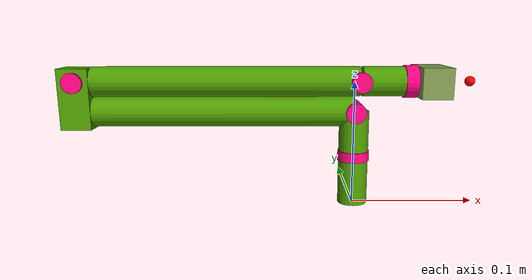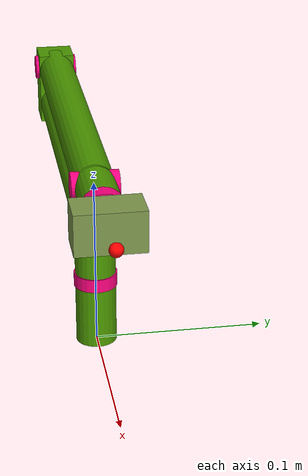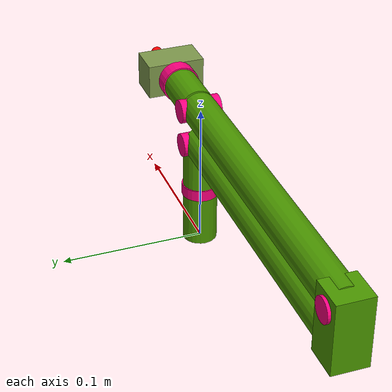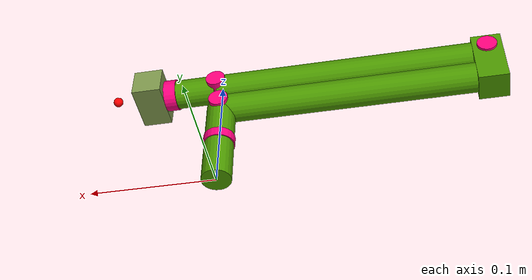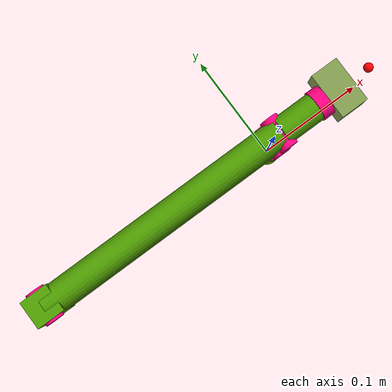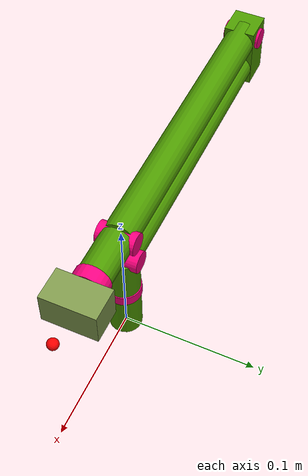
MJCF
<mujoco model="AT arm">
    <compiler inertiafromgeom="true" angle="degree"/>
    <option timestep="0.005" gravity="0 0 0" cone="elliptic" jacobian="auto" solver="Newton" impratio="1.0"/>
    <!--  collision="predefined"  -->
    <option>
        <flag gravity="enable" override="enable"/>
    </option>
    <default>
        <geom contype="1" conaffinity="1" condim="3"/>
        <joint limited="false" damping="0.5" armature="0.1" stiffness="0" frictionloss="0.1"/>
        <motor gear="1 0 0 0 0 0" ctrllimited="false" ctrlrange="-100 100"/>
    </default>
    <worldbody>
        <!--  Link1  -->
        <body name="link1" pos="0 0 0" euler="0 0 0">
            <joint name="L1" pos="0 0 0" type="hinge" axis="0 0 1" limited="false"/>
            <geom type="cylinder" pos="0 0 0.03835" size="0.012 0.03835" rgba="0.3 0.6 0 1"/>
            <geom type="cylinder" pos="0 0 0.04" euler="0 0 0" mass="0.082" size="0.0128 0.004" rgba="1 0 0.5 1"/>
            <!--  Link2  -->
            <body name="link2" pos="0 0 0.0765" euler="90 0 90">
                <joint name="L2" pos="0 0 0" type="hinge" axis="0 0 1" limited="false" range="-150 150"/>
                <geom type="cylinder" pos="0 0.110 0" euler="-90 0 0" size="0.012 0.110" rgba="0.3 0.6 0 1"/>
                <geom type="cylinder" pos="0 0 0" euler="0 0 0" mass="0.082" size="0.008 0.014" rgba="1 0 0.5 1"/>
                <geom type="box" pos="0.011 0.220 0" euler="0 0 0" size="0.024 0.012 0.012" rgba="0.3 0.6 0 1"/>
                <!--  Link3 -->
                <body name="link3" pos="0.024 0.220 0" euler="0 0 -180">
                    <joint name="L3" pos="0 0 0" type="hinge" axis="0 0 1" limited="false" range="-200 100"/>
                    <geom type="cylinder" pos="0 0.111875 0" euler="-90 0 0" mass="0.04"  size="0.012 0.111875" rgba="0.3 0.6 0 1"/>
                    <geom type="cylinder" pos="0 0 0" euler="0 0 0" mass="0.082" size="0.008 0.014" rgba="1 0 0.5 1"/>
                    <!--  Link4 -->
                    <body name="link4" pos="0 0.22375 0" euler="0 0 0">
                        <joint name="L4" pos="0 0 0" type="hinge" axis="0 0 1" limited="false" range="-160 160"/>
                        <geom type="cylinder" pos="0 0.02 0" euler="-90 0 0" mass="0.01" size="0.012 0.018" rgba="0.3 0.6 0 1"/>
                        <geom type="cylinder" pos="0 0 0" euler="0 0 0" mass="0.082" size="0.008 0.014" rgba="1 0 0.5 1"/>
                        <!-- Link5 -->
                        <body name="link5" pos="0 0.04 0" euler="-90 0 0">
                            <joint name="L5" pos="0 0 0" type="hinge" axis="0 0 1" limited="false" range="-160 160"/>
                            <geom type="box" pos="0 0 0.017" euler="0 0 0" mass="0.02" size="0.012 0.02 0.012" rgba="0.5 0.6 0.3 1"/>
                            <geom type="cylinder" pos="0 0 0" euler="0 0 0" mass="0.082" size="0.013 0.005" rgba="1 0 0.5 1"/>
                            <!--  Fingers -->
                            <body name="fingers" pos="0 0 0.048" euler="0 0 0">
                                <geom type="sphere" pos="0 0 0" euler="0 0 0" mass="0.2" size="0.002" rgba="0.5 0.6 0.3 1"/>
                                <site name="EE" type="sphere" pos="0 0 0" size="0.004" rgba="1 0 0 1"/>
                            </body>
                        </body>
                    </body>
                </body>
            </body>
        </body>
    </worldbody>
    <actuator>
        <motor joint="L1" name="link1" gear="1" ctrllimited="true" ctrlrange="-1193 1193"/>
        <motor joint="L2" name="link2" gear="1" ctrllimited="true" ctrlrange="-1193 1193"/>
        <motor joint="L3" name="link3" gear="1" ctrllimited="true" ctrlrange="-1193 1193"/>
        <motor joint="L4" name="link4" gear="1" ctrllimited="true" ctrlrange="-1193 1193"/>
        <motor joint="L5" name="link5" gear="1" ctrllimited="true" ctrlrange="-1193 1193"/>
    </actuator>
</mujoco>
